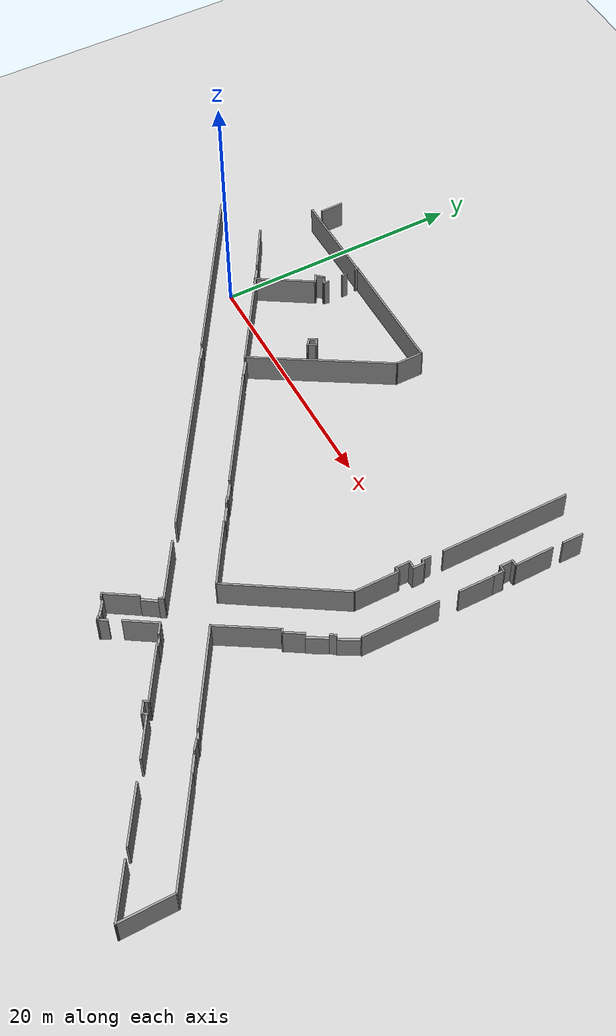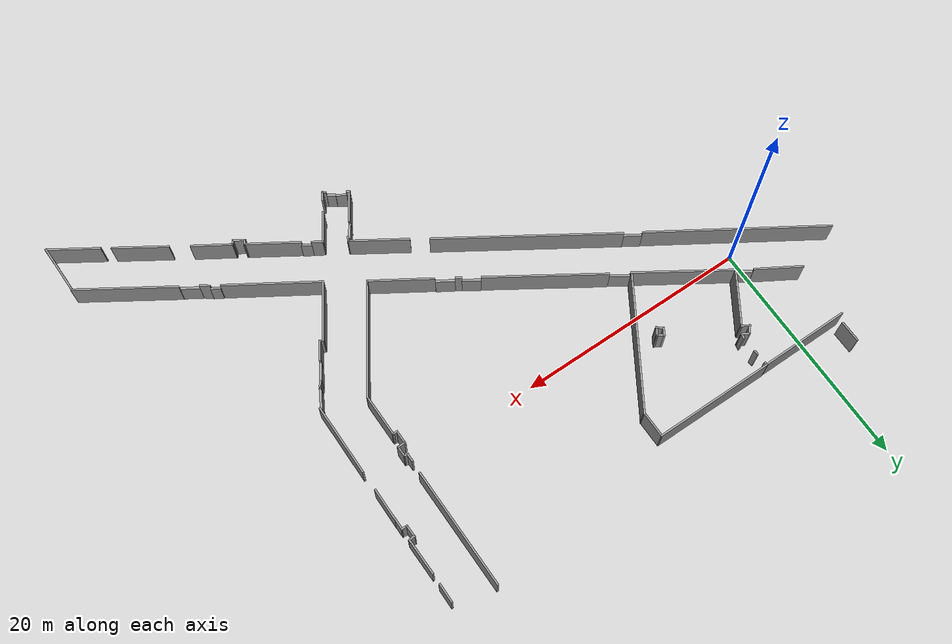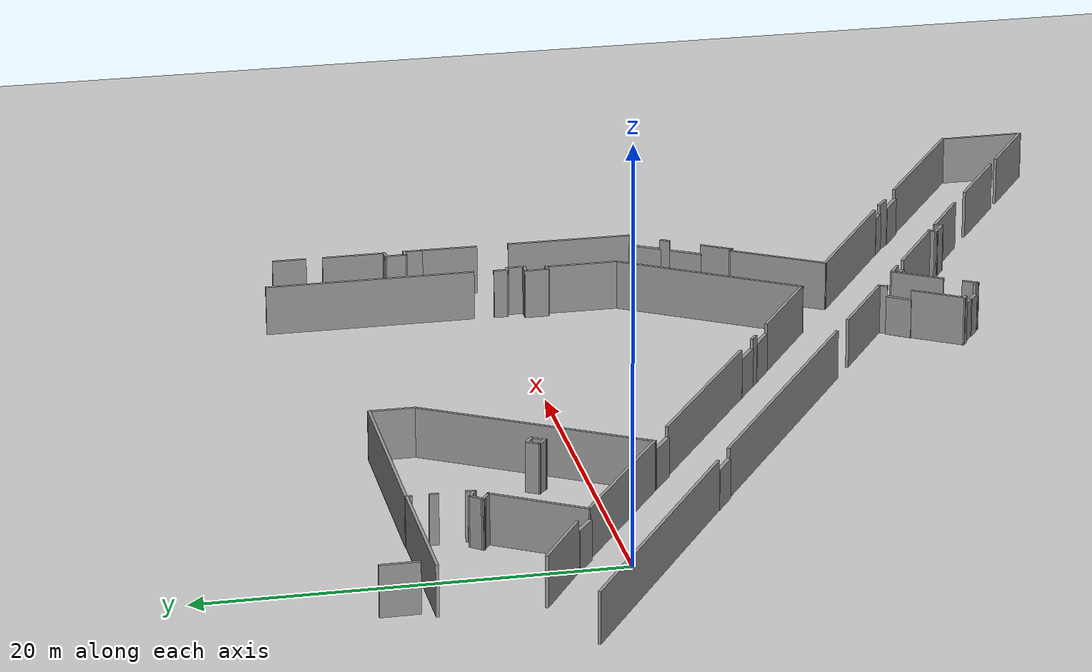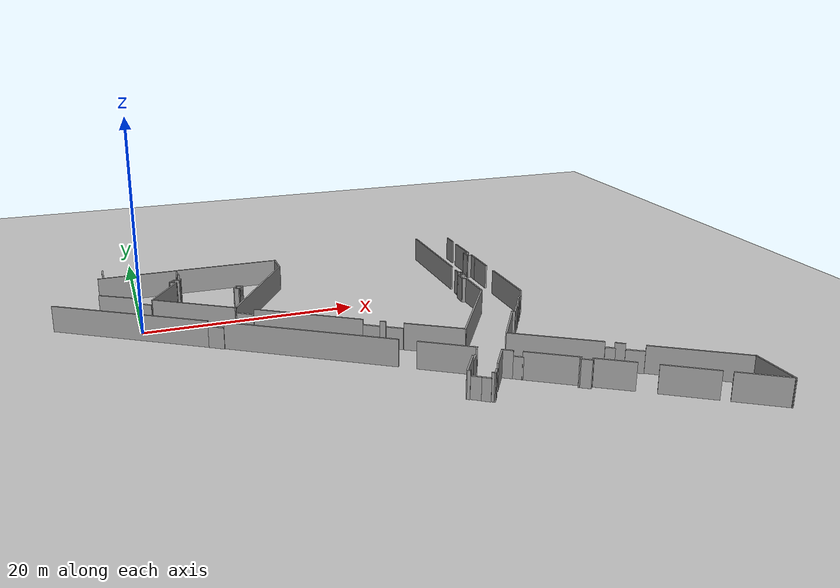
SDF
<sdf version="1.7">
 <world name="default">
  <model name="ground_plane">
   <static>1</static>
   <link name="link">
    <collision name="collision">
     <geometry><plane><normal>0 0 1</normal><size>100 100</size></plane></geometry>
     <surface><friction><ode><mu>100</mu><mu2>50</mu2></ode></friction></surface>
    </collision>
    <visual name="visual">
     <cast_shadows>0</cast_shadows>
     <geometry><plane><normal>0 0 1</normal><size>100 100</size></plane></geometry>
     <material>
      <script><uri>file://media/materials/scripts/gazebo.material</uri><name>Gazebo/Grey</name></script>
     </material>
    </visual>
   </link>
  </model>
  <model name="Hopper_Basement">
   <pose>6.01939 1.54901 0 0 -0 0</pose>
   <link name="Door_1">
    <collision name="Door_1_Collision">
     <geometry><box><size>0.9 0.17 2</size></box></geometry>
     <pose>0 0 1 0 -0 0</pose>
    </collision>
    <visual name="Door_1_Visual">
     <pose>0 0 1 0 -0 0</pose>
     <geometry><box><size>0.9 0.17 2</size></box></geometry>
     <material>
      <script><uri>file://media/materials/scripts/gazebo.material</uri><name>Gazebo/Grey</name></script>
     </material>
    </visual>
    <pose>17.5368 -23.5338 0 0 -0 -0.56303</pose>
   </link>
   <link name="Door_10">
    <collision name="Door_10_Collision">
     <geometry><box><size>1.49816 0.2 2</size></box></geometry>
     <pose>0 0 1 0 -0 0</pose>
    </collision>
    <visual name="Door_10_Visual">
     <pose>0 0 1 0 -0 0</pose>
     <geometry><box><size>1.49816 0.2 2</size></box></geometry>
     <material>
      <script><uri>file://media/materials/scripts/gazebo.material</uri><name>Gazebo/Grey</name></script>
     </material>
    </visual>
    <pose>0.000581 -7.09301 0 0 -0 2.56816</pose>
   </link>
   <link name="Door_11">
    <collision name="Door_11_Collision">
     <geometry><box><size>1.38841 0.2 2</size></box></geometry>
     <pose>0 0 1 0 -0 0</pose>
    </collision>
    <visual name="Door_11_Visual">
     <pose>0 0 1 0 -0 0</pose>
     <geometry><box><size>1.38841 0.2 2</size></box></geometry>
     <material>
      <script><uri>file://media/materials/scripts/gazebo.material</uri><name>Gazebo/Grey</name></script>
     </material>
    </visual>
    <pose>-5.47167 0.553969 0 0 -0 2.53623</pose>
   </link>
   <link name="Door_18">
    <collision name="Door_18_Collision">
     <geometry><box><size>1.69771 0.2 2</size></box></geometry>
     <pose>0 0 1 0 -0 0</pose>
    </collision>
    <visual name="Door_18_Visual">
     <pose>0 0 1 0 -0 0</pose>
     <geometry><box><size>1.69771 0.2 2</size></box></geometry>
     <material>
      <script><uri>file://media/materials/scripts/gazebo.material</uri><name>Gazebo/Grey</name></script>
     </material>
    </visual>
    <pose>27.2177 -11.4449 0 0 -0 1.03772</pose>
   </link>
   <link name="Door_19">
    <collision name="Door_19_Collision">
     <geometry><box><size>1.71307 0.2 2</size></box></geometry>
     <pose>0 0 1 0 -0 0</pose>
    </collision>
    <visual name="Door_19_Visual">
     <pose>0 0 1 0 -0 0</pose>
     <geometry><box><size>1.71307 0.2 2</size></box></geometry>
     <material>
      <script><uri>file://media/materials/scripts/gazebo.material</uri><name>Gazebo/Grey</name></script>
     </material>
    </visual>
    <pose>28.3872 -9.58453 0 0 -0 1.05525</pose>
   </link>
   <link name="Door_2">
    <collision name="Door_2_Collision">
     <geometry><box><size>0.767569 0.2 2</size></box></geometry>
     <pose>0 0 1 0 -0 0</pose>
    </collision>
    <visual name="Door_2_Visual">
     <pose>0 0 1 0 -0 0</pose>
     <geometry><box><size>0.767569 0.2 2</size></box></geometry>
     <material>
      <script><uri>file://media/materials/scripts/gazebo.material</uri><name>Gazebo/Grey</name></script>
     </material>
    </visual>
    <pose>18.2298 -24.0147 0 0 0 -0.60249</pose>
   </link>
   <link name="Door_3">
    <collision name="Door_3_Collision">
     <geometry><box><size>1.32468 0.2 2</size></box></geometry>
     <pose>0 0 1 0 -0 0</pose>
    </collision>
    <visual name="Door_3_Visual">
     <pose>0 0 1 0 -0 0</pose>
     <geometry><box><size>1.32468 0.2 2</size></box></geometry>
     <material>
      <script><uri>file://media/materials/scripts/gazebo.material</uri><name>Gazebo/Grey</name></script>
     </material>
    </visual>
    <pose>18.7678 -20.3905 0 0 0 -2.17722</pose>
   </link>
   <link name="Door_4">
    <collision name="Door_4_Collision">
     <geometry><box><size>0.9 0.17 2</size></box></geometry>
     <pose>0 0 1 0 -0 0</pose>
    </collision>
    <visual name="Door_4_Visual">
     <pose>0 0 1 0 -0 0</pose>
     <geometry><box><size>0.9 0.17 2</size></box></geometry>
     <material>
      <script><uri>file://media/materials/scripts/gazebo.material</uri><name>Gazebo/Grey</name></script>
     </material>
    </visual>
    <pose>22.2894 -21.3526 0 0 -0 2.55037</pose>
   </link>
   <link name="Door_5">
    <collision name="Door_5_Collision">
     <geometry><box><size>0.850621 0.2 2</size></box></geometry>
     <pose>0 0 1 0 -0 0</pose>
    </collision>
    <visual name="Door_5_Visual">
     <pose>0 0 1 0 -0 0</pose>
     <geometry><box><size>0.850621 0.2 2</size></box></geometry>
     <material>
      <script><uri>file://media/materials/scripts/gazebo.material</uri><name>Gazebo/Grey</name></script>
     </material>
    </visual>
    <pose>30.3252 -22.2534 0 0 0 -0.562767</pose>
   </link>
   <link name="Door_6">
    <collision name="Door_6_Collision">
     <geometry><box><size>1.59928 0.2 2</size></box></geometry>
     <pose>0 0 1 0 -0 0</pose>
    </collision>
    <visual name="Door_6_Visual">
     <pose>0 0 1 0 -0 0</pose>
     <geometry><box><size>1.59928 0.2 2</size></box></geometry>
     <material>
      <script><uri>file://media/materials/scripts/gazebo.material</uri><name>Gazebo/Grey</name></script>
     </material>
    </visual>
    <pose>31.9912 -23.4036 0 0 -0 2.58393</pose>
   </link>
   <link name="Door_7">
    <collision name="Door_7_Collision">
     <geometry><box><size>1.56615 0.2 2</size></box></geometry>
     <pose>0 0 1 0 -0 0</pose>
    </collision>
    <visual name="Door_7_Visual">
     <pose>0 0 1 0 -0 0</pose>
     <geometry><box><size>1.56615 0.2 2</size></box></geometry>
     <material>
      <script><uri>file://media/materials/scripts/gazebo.material</uri><name>Gazebo/Grey</name></script>
     </material>
    </visual>
    <pose>14.8119 -12.3698 0 0 -0 2.58025</pose>
   </link>
   <link name="Door_8">
    <collision name="Door_8_Collision">
     <geometry><box><size>1.56443 0.2 2</size></box></geometry>
     <pose>0 0 1 0 -0 0</pose>
    </collision>
    <visual name="Door_8_Visual">
     <pose>0 0 1 0 -0 0</pose>
     <geometry><box><size>1.56443 0.2 2</size></box></geometry>
     <material>
      <script><uri>file://media/materials/scripts/gazebo.material</uri><name>Gazebo/Grey</name></script>
     </material>
    </visual>
    <pose>13.0298 -11.2254 0 0 -0 2.55791</pose>
   </link>
   <link name="Door_9">
    <collision name="Door_9_Collision">
     <geometry><box><size>1.72128 0.2 2</size></box></geometry>
     <pose>0 0 1 0 -0 0</pose>
    </collision>
    <visual name="Door_9_Visual">
     <pose>0 0 1 0 -0 0</pose>
     <geometry><box><size>1.72128 0.2 2</size></box></geometry>
     <material>
      <script><uri>file://media/materials/scripts/gazebo.material</uri><name>Gazebo/Grey</name></script>
     </material>
    </visual>
    <pose>2.98021 -4.81191 0 0 -0 2.54196</pose>
   </link>
   <link name="Wall_10">
    <collision name="Wall_10_Collision">
     <geometry><box><size>4.03256 0.15 2.5</size></box></geometry>
     <pose>0 0 1.25 0 -0 0</pose>
    </collision>
    <visual name="Wall_10_Visual">
     <pose>0 0 1.25 0 -0 0</pose>
     <geometry><box><size>4.03256 0.15 2.5</size></box></geometry>
     <material>
      <script><uri>file://media/materials/scripts/gazebo.material</uri><name>Gazebo/Grey</name></script>
      <ambient>1 1 1 1</ambient>
     </material>
     <meta><layer>0</layer></meta>
    </visual>
    <pose>-7.77452 2.0023 0 0 -0 -0.539781</pose>
   </link>
   <link name="Wall_12">
    <collision name="Wall_12_Collision">
     <geometry><box><size>0.50762 0.15 2.5</size></box></geometry>
     <pose>0 0 1.25 0 -0 0</pose>
    </collision>
    <visual name="Wall_12_Visual">
     <pose>0 0 1.25 0 -0 0</pose>
     <geometry><box><size>0.50762 0.15 2.5</size></box></geometry>
     <material>
      <script><uri>file://media/materials/scripts/gazebo.material</uri><name>Gazebo/Grey</name></script>
      <ambient>1 1 1 1</ambient>
     </material>
     <meta><layer>0</layer></meta>
    </visual>
    <pose>-1.74517 4.99309 0 0 -0 -1.76819</pose>
   </link>
   <link name="Wall_13">
    <collision name="Wall_13_Collision">
     <geometry><box><size>0.75 0.15 2.5</size></box></geometry>
     <pose>0 0 1.25 0 -0 0</pose>
    </collision>
    <visual name="Wall_13_Visual">
     <pose>0 0 1.25 0 -0 0</pose>
     <geometry><box><size>0.75 0.15 2.5</size></box></geometry>
     <material>
      <script><uri>file://media/materials/scripts/gazebo.material</uri><name>Gazebo/Grey</name></script>
      <ambient>1 1 1 1</ambient>
     </material>
     <meta><layer>0</layer></meta>
    </visual>
    <pose>-2.04005 4.96775 0 0 -0 2.61799</pose>
   </link>
   <link name="Wall_130">
    <collision name="Wall_130_Collision">
     <geometry><box><size>1.70584 0.15 2.5</size></box></geometry>
     <pose>0 0 1.25 0 -0 0</pose>
    </collision>
    <visual name="Wall_130_Visual">
     <pose>0 0 1.25 0 -0 0</pose>
     <geometry><box><size>1.70584 0.15 2.5</size></box></geometry>
     <material>
      <script><uri>file://media/materials/scripts/gazebo.material</uri><name>Gazebo/Grey</name></script>
      <ambient>1 1 1 1</ambient>
     </material>
     <meta><layer>0</layer></meta>
    </visual>
    <pose>28.9443 8.61431 0 0 -0 -1.5806</pose>
   </link>
   <link name="Wall_133">
    <collision name="Wall_133_Collision">
     <geometry><box><size>3.22589 0.15 2.5</size></box></geometry>
     <pose>0 0 1.25 0 -0 0</pose>
    </collision>
    <visual name="Wall_133_Visual">
     <pose>0 0 1.25 0 -0 0</pose>
     <geometry><box><size>3.22589 0.15 2.5</size></box></geometry>
     <material>
      <script><uri>file://media/materials/scripts/gazebo.material</uri><name>Gazebo/Grey</name></script>
      <ambient>1 1 1 1</ambient>
     </material>
     <meta><layer>0</layer></meta>
    </visual>
    <pose>28.9359 5.31794 0 0 -0 -1.56218</pose>
   </link>
   <link name="Wall_134">
    <collision name="Wall_134_Collision">
     <geometry><box><size>0.602525 0.15 2.5</size></box></geometry>
     <pose>0 0 1.25 0 -0 0</pose>
    </collision>
    <visual name="Wall_134_Visual">
     <pose>0 0 1.25 0 -0 0</pose>
     <geometry><box><size>0.602525 0.15 2.5</size></box></geometry>
     <material>
      <script><uri>file://media/materials/scripts/gazebo.material</uri><name>Gazebo/Grey</name></script>
      <ambient>1 1 1 1</ambient>
     </material>
     <meta><layer>0</layer></meta>
    </visual>
    <pose>28.7238 3.76012 0 0 -0 -3.05358</pose>
   </link>
   <link name="Wall_135">
    <collision name="Wall_135_Collision">
     <geometry><box><size>1.13119 0.15 2.5</size></box></geometry>
     <pose>0 0 1.25 0 -0 0</pose>
    </collision>
    <visual name="Wall_135_Visual">
     <pose>0 0 1.25 0 -0 0</pose>
     <geometry><box><size>1.13119 0.15 2.5</size></box></geometry>
     <material>
      <script><uri>file://media/materials/scripts/gazebo.material</uri><name>Gazebo/Grey</name></script>
      <ambient>1 1 1 1</ambient>
     </material>
     <meta><layer>0</layer></meta>
    </visual>
    <pose>28.505 3.24968 0 0 -0 -1.55728</pose>
   </link>
   <link name="Wall_136">
    <collision name="Wall_136_Collision">
     <geometry><box><size>0.587716 0.15 2.5</size></box></geometry>
     <pose>0 0 1.25 0 -0 0</pose>
    </collision>
    <visual name="Wall_136_Visual">
     <pose>0 0 1.25 0 -0 0</pose>
     <geometry><box><size>0.587716 0.15 2.5</size></box></geometry>
     <material>
      <script><uri>file://media/materials/scripts/gazebo.material</uri><name>Gazebo/Grey</name></script>
      <ambient>1 1 1 1</ambient>
     </material>
     <meta><layer>0</layer></meta>
    </visual>
    <pose>28.7304 2.75251 0 0 -0 -0.030294</pose>
   </link>
   <link name="Wall_137">
    <collision name="Wall_137_Collision">
     <geometry><box><size>1 0.15 2.5</size></box></geometry>
     <pose>0 0 1.25 0 -0 0</pose>
    </collision>
    <visual name="Wall_137_Visual">
     <pose>0 0 1.25 0 -0 0</pose>
     <geometry><box><size>1 0.15 2.5</size></box></geometry>
     <material>
      <script><uri>file://media/materials/scripts/gazebo.material</uri><name>Gazebo/Grey</name></script>
      <ambient>1 1 1 1</ambient>
     </material>
     <meta><layer>0</layer></meta>
    </visual>
    <pose>28.9491 2.32088 0 0 -0 -1.5708</pose>
   </link>
   <link name="Wall_139">
    <collision name="Wall_139_Collision">
     <geometry><box><size>2.88119 0.15 2.5</size></box></geometry>
     <pose>0 0 1.25 0 -0 0</pose>
    </collision>
    <visual name="Wall_139_Visual">
     <pose>0 0 1.25 0 -0 0</pose>
     <geometry><box><size>2.88119 0.15 2.5</size></box></geometry>
     <material>
      <script><uri>file://media/materials/scripts/gazebo.material</uri><name>Gazebo/Grey</name></script>
      <ambient>1 1 1 1</ambient>
     </material>
     <meta><layer>0</layer></meta>
    </visual>
    <pose>28.9491 0.465496 0 0 -0 1.56109</pose>
   </link>
   <link name="Wall_14">
    <collision name="Wall_14_Collision">
     <geometry><box><size>0.838631 0.15 2.5</size></box></geometry>
     <pose>0 0 1.25 0 -0 0</pose>
    </collision>
    <visual name="Wall_14_Visual">
     <pose>0 0 1.25 0 -0 0</pose>
     <geometry><box><size>0.838631 0.15 2.5</size></box></geometry>
     <material>
      <script><uri>file://media/materials/scripts/gazebo.material</uri><name>Gazebo/Grey</name></script>
      <ambient>1 1 1 1</ambient>
     </material>
     <meta><layer>0</layer></meta>
    </visual>
    <pose>-2.53099 4.86255 0 0 -0 -2.30675</pose>
   </link>
   <link name="Wall_141">
    <collision name="Wall_141_Collision">
     <geometry><box><size>6.28034 0.15 2.5</size></box></geometry>
     <pose>0 0 1.25 0 -0 0</pose>
    </collision>
    <visual name="Wall_141_Visual">
     <pose>0 0 1.25 0 -0 0</pose>
     <geometry><box><size>6.28034 0.15 2.5</size></box></geometry>
     <material>
      <script><uri>file://media/materials/scripts/gazebo.material</uri><name>Gazebo/Grey</name></script>
      <ambient>1 1 1 1</ambient>
     </material>
     <meta><layer>0</layer></meta>
    </visual>
    <pose>28.9323 -5.7266 0 0 -0 -1.57737</pose>
   </link>
   <link name="Wall_144">
    <collision name="Wall_144_Collision">
     <geometry><box><size>0.525069 0.15 2.5</size></box></geometry>
     <pose>0 0 1.25 0 -0 0</pose>
    </collision>
    <visual name="Wall_144_Visual">
     <pose>0 0 1.25 0 -0 0</pose>
     <geometry><box><size>0.525069 0.15 2.5</size></box></geometry>
     <material>
      <script><uri>file://media/materials/scripts/gazebo.material</uri><name>Gazebo/Grey</name></script>
      <ambient>1 1 1 1</ambient>
     </material>
     <meta><layer>0</layer></meta>
    </visual>
    <pose>27.8132 -10.4953 0 0 -0 -2.20355</pose>
   </link>
   <link name="Wall_146">
    <collision name="Wall_146_Collision">
     <geometry><box><size>1.71931 0.15 2.5</size></box></geometry>
     <pose>0 0 1.25 0 -0 0</pose>
    </collision>
    <visual name="Wall_146_Visual">
     <pose>0 0 1.25 0 -0 0</pose>
     <geometry><box><size>1.71931 0.15 2.5</size></box></geometry>
     <material>
      <script><uri>file://media/materials/scripts/gazebo.material</uri><name>Gazebo/Grey</name></script>
      <ambient>1 1 1 1</ambient>
     </material>
     <meta><layer>0</layer></meta>
    </visual>
    <pose>26.3457 -12.8341 0 0 -0 -2.13455</pose>
   </link>
   <link name="Wall_147">
    <collision name="Wall_147_Collision">
     <geometry><box><size>0.410537 0.15 2.5</size></box></geometry>
     <pose>0 0 1.25 0 -0 0</pose>
    </collision>
    <visual name="Wall_147_Visual">
     <pose>0 0 1.25 0 -0 0</pose>
     <geometry><box><size>0.410537 0.15 2.5</size></box></geometry>
     <material>
      <script><uri>file://media/materials/scripts/gazebo.material</uri><name>Gazebo/Grey</name></script>
      <ambient>1 1 1 1</ambient>
     </material>
     <meta><layer>0</layer></meta>
    </visual>
    <pose>25.8044 -13.4516 0 0 -0 2.78282</pose>
   </link>
   <link name="Wall_148">
    <collision name="Wall_148_Collision">
     <geometry><box><size>5.17139 0.15 2.5</size></box></geometry>
     <pose>0 0 1.25 0 -0 0</pose>
    </collision>
    <visual name="Wall_148_Visual">
     <pose>0 0 1.25 0 -0 0</pose>
     <geometry><box><size>5.17139 0.15 2.5</size></box></geometry>
     <material>
      <script><uri>file://media/materials/scripts/gazebo.material</uri><name>Gazebo/Grey</name></script>
      <ambient>1 1 1 1</ambient>
     </material>
     <meta><layer>0</layer></meta>
    </visual>
    <pose>24.3483 -15.5328 0 0 -0 -2.13101</pose>
   </link>
   <link name="Wall_15">
    <collision name="Wall_15_Collision">
     <geometry><box><size>0.811653 0.15 2.5</size></box></geometry>
     <pose>0 0 1.25 0 -0 0</pose>
    </collision>
    <visual name="Wall_15_Visual">
     <pose>0 0 1.25 0 -0 0</pose>
     <geometry><box><size>0.811653 0.15 2.5</size></box></geometry>
     <material>
      <script><uri>file://media/materials/scripts/gazebo.material</uri><name>Gazebo/Grey</name></script>
      <ambient>1 1 1 1</ambient>
     </material>
     <meta><layer>0</layer></meta>
    </visual>
    <pose>-2.48159 4.43201 0 0 -0 -0.558599</pose>
   </link>
   <link name="Wall_150">
    <collision name="Wall_150_Collision">
     <geometry><box><size>8.26316 0.15 2.5</size></box></geometry>
     <pose>0 0 1.25 0 -0 0</pose>
    </collision>
    <visual name="Wall_150_Visual">
     <pose>0 0 1.25 0 -0 0</pose>
     <geometry><box><size>8.26316 0.15 2.5</size></box></geometry>
     <material>
      <script><uri>file://media/materials/scripts/gazebo.material</uri><name>Gazebo/Grey</name></script>
      <ambient>1 1 1 1</ambient>
     </material>
     <meta><layer>0</layer></meta>
    </visual>
    <pose>26.4448 -19.8248 0 0 -0 -0.562982</pose>
   </link>
   <link name="Wall_152">
    <collision name="Wall_152_Collision">
     <geometry><box><size>0.890998 0.15 2.5</size></box></geometry>
     <pose>0 0 1.25 0 -0 0</pose>
    </collision>
    <visual name="Wall_152_Visual">
     <pose>0 0 1.25 0 -0 0</pose>
     <geometry><box><size>0.890998 0.15 2.5</size></box></geometry>
     <material>
      <script><uri>file://media/materials/scripts/gazebo.material</uri><name>Gazebo/Grey</name></script>
      <ambient>1 1 1 1</ambient>
     </material>
     <meta><layer>0</layer></meta>
    </visual>
    <pose>30.9654 -22.6988 0 0 -0 -0.639386</pose>
   </link>
   <link name="Wall_154">
    <collision name="Wall_154_Collision">
     <geometry><box><size>2.81857 0.15 2.5</size></box></geometry>
     <pose>0 0 1.25 0 -0 0</pose>
    </collision>
    <visual name="Wall_154_Visual">
     <pose>0 0 1.25 0 -0 0</pose>
     <geometry><box><size>2.81857 0.15 2.5</size></box></geometry>
     <material>
      <script><uri>file://media/materials/scripts/gazebo.material</uri><name>Gazebo/Grey</name></script>
      <ambient>1 1 1 1</ambient>
     </material>
     <meta><layer>0</layer></meta>
    </visual>
    <pose>17.655 -22.0889 0 0 -0 -2.14454</pose>
   </link>
   <link name="Wall_155">
    <collision name="Wall_155_Collision">
     <geometry><box><size>0.33611 0.15 2.5</size></box></geometry>
     <pose>0 0 1.25 0 -0 0</pose>
    </collision>
    <visual name="Wall_155_Visual">
     <pose>0 0 1.25 0 -0 0</pose>
     <geometry><box><size>0.33611 0.15 2.5</size></box></geometry>
     <material>
      <script><uri>file://media/materials/scripts/gazebo.material</uri><name>Gazebo/Grey</name></script>
      <ambient>1 1 1 1</ambient>
     </material>
     <meta><layer>0</layer></meta>
    </visual>
    <pose>17.007 -23.2629 0 0 -0 -0.610726</pose>
   </link>
   <link name="Wall_157">
    <collision name="Wall_157_Collision">
     <geometry><box><size>0.388162 0.15 2.5</size></box></geometry>
     <pose>0 0 1.25 0 -0 0</pose>
    </collision>
    <visual name="Wall_157_Visual">
     <pose>0 0 1.25 0 -0 0</pose>
     <geometry><box><size>0.388162 0.15 2.5</size></box></geometry>
     <material>
      <script><uri>file://media/materials/scripts/gazebo.material</uri><name>Gazebo/Grey</name></script>
      <ambient>1 1 1 1</ambient>
     </material>
     <meta><layer>0</layer></meta>
    </visual>
    <pose>18.6842 -24.3073 0 0 -0 -0.694738</pose>
   </link>
   <link name="Wall_158">
    <collision name="Wall_158_Collision">
     <geometry><box><size>0.835256 0.15 2.5</size></box></geometry>
     <pose>0 0 1.25 0 -0 0</pose>
    </collision>
    <visual name="Wall_158_Visual">
     <pose>0 0 1.25 0 -0 0</pose>
     <geometry><box><size>0.835256 0.15 2.5</size></box></geometry>
     <material>
      <script><uri>file://media/materials/scripts/gazebo.material</uri><name>Gazebo/Grey</name></script>
      <ambient>1 1 1 1</ambient>
     </material>
     <meta><layer>0</layer></meta>
    </visual>
    <pose>18.9586 -24.0938 0 0 -0 1.00748</pose>
   </link>
   <link name="Wall_16">
    <collision name="Wall_16_Collision">
     <geometry><box><size>4.97507 0.15 2.5</size></box></geometry>
     <pose>0 0 1.25 0 -0 0</pose>
    </collision>
    <visual name="Wall_16_Visual">
     <pose>0 0 1.25 0 -0 0</pose>
     <geometry><box><size>4.97507 0.15 2.5</size></box></geometry>
     <material>
      <script><uri>file://media/materials/scripts/gazebo.material</uri><name>Gazebo/Grey</name></script>
      <ambient>1 1 1 1</ambient>
     </material>
     <meta><layer>0</layer></meta>
    </visual>
    <pose>-3.49855 2.22275 0 0 -0 -2.13864</pose>
   </link>
   <link name="Wall_160">
    <collision name="Wall_160_Collision">
     <geometry><box><size>2.78469 0.15 2.5</size></box></geometry>
     <pose>0 0 1.25 0 -0 0</pose>
    </collision>
    <visual name="Wall_160_Visual">
     <pose>0 0 1.25 0 -0 0</pose>
     <geometry><box><size>2.78469 0.15 2.5</size></box></geometry>
     <material>
      <script><uri>file://media/materials/scripts/gazebo.material</uri><name>Gazebo/Grey</name></script>
      <ambient>1 1 1 1</ambient>
     </material>
     <meta><layer>0</layer></meta>
    </visual>
    <pose>20.4223 -21.7382 0 0 -0 0.995634</pose>
   </link>
   <link name="Wall_161">
    <collision name="Wall_161_Collision">
     <geometry><box><size>1.01303 0.15 2.5</size></box></geometry>
     <pose>0 0 1.25 0 -0 0</pose>
    </collision>
    <visual name="Wall_161_Visual">
     <pose>0 0 1.25 0 -0 0</pose>
     <geometry><box><size>1.01303 0.15 2.5</size></box></geometry>
     <material>
      <script><uri>file://media/materials/scripts/gazebo.material</uri><name>Gazebo/Grey</name></script>
      <ambient>1 1 1 1</ambient>
     </material>
     <meta><layer>0</layer></meta>
    </visual>
    <pose>21.5048 -20.8615 0 0 -0 -0.558599</pose>
   </link>
   <link name="Wall_163">
    <collision name="Wall_163_Collision">
     <geometry><box><size>4.68016 0.15 2.5</size></box></geometry>
     <pose>0 0 1.25 0 -0 0</pose>
    </collision>
    <visual name="Wall_163_Visual">
     <pose>0 0 1.25 0 -0 0</pose>
     <geometry><box><size>4.68016 0.15 2.5</size></box></geometry>
     <material>
      <script><uri>file://media/materials/scripts/gazebo.material</uri><name>Gazebo/Grey</name></script>
      <ambient>1 1 1 1</ambient>
     </material>
     <meta><layer>0</layer></meta>
    </visual>
    <pose>24.5465 -22.8055 0 0 -0 -0.564664</pose>
   </link>
   <link name="Wall_164">
    <collision name="Wall_164_Collision">
     <geometry><box><size>0.509836 0.15 2.5</size></box></geometry>
     <pose>0 0 1.25 0 -0 0</pose>
    </collision>
    <visual name="Wall_164_Visual">
     <pose>0 0 1.25 0 -0 0</pose>
     <geometry><box><size>0.509836 0.15 2.5</size></box></geometry>
     <material>
      <script><uri>file://media/materials/scripts/gazebo.material</uri><name>Gazebo/Grey</name></script>
      <ambient>1 1 1 1</ambient>
     </material>
     <meta><layer>0</layer></meta>
    </visual>
    <pose>26.3533 -24.1625 0 0 -0 -2.20582</pose>
   </link>
   <link name="Wall_165">
    <collision name="Wall_165_Collision">
     <geometry><box><size>1.10191 0.15 2.5</size></box></geometry>
     <pose>0 0 1.25 0 -0 0</pose>
    </collision>
    <visual name="Wall_165_Visual">
     <pose>0 0 1.25 0 -0 0</pose>
     <geometry><box><size>1.10191 0.15 2.5</size></box></geometry>
     <material>
      <script><uri>file://media/materials/scripts/gazebo.material</uri><name>Gazebo/Grey</name></script>
      <ambient>1 1 1 1</ambient>
     </material>
     <meta><layer>0</layer></meta>
    </visual>
    <pose>26.6506 -24.5589 0 0 -0 -0.556902</pose>
   </link>
   <link name="Wall_166">
    <collision name="Wall_166_Collision">
     <geometry><box><size>0.497679 0.15 2.5</size></box></geometry>
     <pose>0 0 1.25 0 -0 0</pose>
    </collision>
    <visual name="Wall_166_Visual">
     <pose>0 0 1.25 0 -0 0</pose>
     <geometry><box><size>0.497679 0.15 2.5</size></box></geometry>
     <material>
      <script><uri>file://media/materials/scripts/gazebo.material</uri><name>Gazebo/Grey</name></script>
      <ambient>1 1 1 1</ambient>
     </material>
     <meta><layer>0</layer></meta>
    </visual>
    <pose>27.1614 -24.6732 0 0 -0 0.909753</pose>
   </link>
   <link name="Wall_168">
    <collision name="Wall_168_Collision">
     <geometry><box><size>3.5003 0.15 2.5</size></box></geometry>
     <pose>0 0 1.25 0 -0 0</pose>
    </collision>
    <visual name="Wall_168_Visual">
     <pose>0 0 1.25 0 -0 0</pose>
     <geometry><box><size>3.5003 0.15 2.5</size></box></geometry>
     <material>
      <script><uri>file://media/materials/scripts/gazebo.material</uri><name>Gazebo/Grey</name></script>
      <ambient>1 1 1 1</ambient>
     </material>
     <meta><layer>0</layer></meta>
    </visual>
    <pose>28.686 -25.4279 0 0 -0 -0.561494</pose>
   </link>
   <link name="Wall_17">
    <collision name="Wall_17_Collision">
     <geometry><box><size>8.49585 0.15 2.5</size></box></geometry>
     <pose>0 0 1.25 0 -0 0</pose>
    </collision>
    <visual name="Wall_17_Visual">
     <pose>0 0 1.25 0 -0 0</pose>
     <geometry><box><size>8.49585 0.15 2.5</size></box></geometry>
     <material>
      <script><uri>file://media/materials/scripts/gazebo.material</uri><name>Gazebo/Grey</name></script>
      <ambient>1 1 1 1</ambient>
     </material>
     <meta><layer>0</layer></meta>
    </visual>
    <pose>-1.2893 -2.07302 0 0 -0 -0.572852</pose>
   </link>
   <link name="Wall_170">
    <collision name="Wall_170_Collision">
     <geometry><box><size>8.6046 0.15 2.5</size></box></geometry>
     <pose>0 0 1.25 0 -0 0</pose>
    </collision>
    <visual name="Wall_170_Visual">
     <pose>0 0 1.25 0 -0 0</pose>
     <geometry><box><size>8.6046 0.15 2.5</size></box></geometry>
     <material>
      <script><uri>file://media/materials/scripts/gazebo.material</uri><name>Gazebo/Grey</name></script>
      <ambient>1 1 1 1</ambient>
     </material>
     <meta><layer>0</layer></meta>
    </visual>
    <pose>36.3323 -26.114 0 0 -0 -0.569495</pose>
   </link>
   <link name="Wall_173">
    <collision name="Wall_173_Collision">
     <geometry><box><size>4.68372 0.15 2.5</size></box></geometry>
     <pose>0 0 1.25 0 -0 0</pose>
    </collision>
    <visual name="Wall_173_Visual">
     <pose>0 0 1.25 0 -0 0</pose>
     <geometry><box><size>4.68372 0.15 2.5</size></box></geometry>
     <material>
      <script><uri>file://media/materials/scripts/gazebo.material</uri><name>Gazebo/Grey</name></script>
      <ambient>1 1 1 1</ambient>
     </material>
     <meta><layer>0</layer></meta>
    </visual>
    <pose>33.5345 -28.5383 0 0 -0 -0.572146</pose>
   </link>
   <link name="Wall_175">
    <collision name="Wall_175_Collision">
     <geometry><box><size>4.49776 0.15 2.5</size></box></geometry>
     <pose>0 0 1.25 0 -0 0</pose>
    </collision>
    <visual name="Wall_175_Visual">
     <pose>0 0 1.25 0 -0 0</pose>
     <geometry><box><size>4.49776 0.15 2.5</size></box></geometry>
     <material>
      <script><uri>file://media/materials/scripts/gazebo.material</uri><name>Gazebo/Grey</name></script>
      <ambient>1 1 1 1</ambient>
     </material>
     <meta><layer>0</layer></meta>
    </visual>
    <pose>38.0628 -31.458 0 0 -0 -0.570495</pose>
   </link>
   <link name="Wall_176">
    <collision name="Wall_176_Collision">
     <geometry><box><size>4.32764 0.15 2.5</size></box></geometry>
     <pose>0 0 1.25 0 -0 0</pose>
    </collision>
    <visual name="Wall_176_Visual">
     <pose>0 0 1.25 0 -0 0</pose>
     <geometry><box><size>4.32764 0.15 2.5</size></box></geometry>
     <material>
      <script><uri>file://media/materials/scripts/gazebo.material</uri><name>Gazebo/Grey</name></script>
      <ambient>1 1 1 1</ambient>
     </material>
     <meta><layer>0</layer></meta>
    </visual>
    <pose>39.8848 -30.5432 0 0 -0 1.57445</pose>
   </link>
   <link name="Wall_179">
    <collision name="Wall_179_Collision">
     <geometry><box><size>0.44408 0.15 2.5</size></box></geometry>
     <pose>0 0 1.25 0 -0 0</pose>
    </collision>
    <visual name="Wall_179_Visual">
     <pose>0 0 1.25 0 -0 0</pose>
     <geometry><box><size>0.44408 0.15 2.5</size></box></geometry>
     <material>
      <script><uri>file://media/materials/scripts/gazebo.material</uri><name>Gazebo/Grey</name></script>
      <ambient>1 1 1 1</ambient>
     </material>
     <meta><layer>0</layer></meta>
    </visual>
    <pose>-1.74366 6.68623 0 0 -0 -1.53633</pose>
   </link>
   <link name="Wall_181">
    <collision name="Wall_181_Collision">
     <geometry><box><size>0.742121 0.15 2.5</size></box></geometry>
     <pose>0 0 1.25 0 -0 0</pose>
    </collision>
    <visual name="Wall_181_Visual">
     <pose>0 0 1.25 0 -0 0</pose>
     <geometry><box><size>0.742121 0.15 2.5</size></box></geometry>
     <material>
      <script><uri>file://media/materials/scripts/gazebo.material</uri><name>Gazebo/Grey</name></script>
      <ambient>1 1 1 1</ambient>
     </material>
     <meta><layer>0</layer></meta>
    </visual>
    <pose>3.13929 1.17314 0 0 -0 -2.09559</pose>
   </link>
   <link name="Wall_182">
    <collision name="Wall_182_Collision">
     <geometry><box><size>0.706009 0.15 2.5</size></box></geometry>
     <pose>0 0 1.25 0 -0 0</pose>
    </collision>
    <visual name="Wall_182_Visual">
     <pose>0 0 1.25 0 -0 0</pose>
     <geometry><box><size>0.706009 0.15 2.5</size></box></geometry>
     <material>
      <script><uri>file://media/materials/scripts/gazebo.material</uri><name>Gazebo/Grey</name></script>
      <ambient>1 1 1 1</ambient>
     </material>
     <meta><layer>0</layer></meta>
    </visual>
    <pose>3.20671 0.741609 0 0 -0 -0.682317</pose>
   </link>
   <link name="Wall_183">
    <collision name="Wall_183_Collision">
     <geometry><box><size>0.816119 0.15 2.5</size></box></geometry>
     <pose>0 0 1.25 0 -0 0</pose>
    </collision>
    <visual name="Wall_183_Visual">
     <pose>0 0 1.25 0 -0 0</pose>
     <geometry><box><size>0.816119 0.15 2.5</size></box></geometry>
     <material>
      <script><uri>file://media/materials/scripts/gazebo.material</uri><name>Gazebo/Grey</name></script>
      <ambient>1 1 1 1</ambient>
     </material>
     <meta><layer>0</layer></meta>
    </visual>
    <pose>3.59778 0.849491 0 0 -0 1.01649</pose>
   </link>
   <link name="Wall_184">
    <collision name="Wall_184_Collision">
     <geometry><box><size>0.681939 0.15 2.5</size></box></geometry>
     <pose>0 0 1.25 0 -0 0</pose>
    </collision>
    <visual name="Wall_184_Visual">
     <pose>0 0 1.25 0 -0 0</pose>
     <geometry><box><size>0.681939 0.15 2.5</size></box></geometry>
     <material>
      <script><uri>file://media/materials/scripts/gazebo.material</uri><name>Gazebo/Grey</name></script>
      <ambient>1 1 1 1</ambient>
     </material>
     <meta><layer>0</layer></meta>
    </visual>
    <pose>3.54384 1.26753 0 0 -0 2.60987</pose>
   </link>
   <link name="Wall_186">
    <collision name="Wall_186_Collision">
     <geometry><box><size>12.0092 0.15 2.5</size></box></geometry>
     <pose>0 0 1.25 0 -0 0</pose>
    </collision>
    <visual name="Wall_186_Visual">
     <pose>0 0 1.25 0 -0 0</pose>
     <geometry><box><size>12.0092 0.15 2.5</size></box></geometry>
     <material>
      <script><uri>file://media/materials/scripts/gazebo.material</uri><name>Gazebo/Grey</name></script>
      <ambient>1 1 1 1</ambient>
     </material>
     <meta><layer>0</layer></meta>
    </visual>
    <pose>5.3417 0.70487 0 0 -0 1.01586</pose>
   </link>
   <link name="Wall_187">
    <collision name="Wall_187_Collision">
     <geometry><box><size>2.3346 0.15 2.5</size></box></geometry>
     <pose>0 0 1.25 0 -0 0</pose>
    </collision>
    <visual name="Wall_187_Visual">
     <pose>0 0 1.25 0 -0 0</pose>
     <geometry><box><size>2.3346 0.15 2.5</size></box></geometry>
     <material>
      <script><uri>file://media/materials/scripts/gazebo.material</uri><name>Gazebo/Grey</name></script>
      <ambient>1 1 1 1</ambient>
     </material>
     <meta><layer>0</layer></meta>
    </visual>
    <pose>8.46594 6.83692 0 0 -0 1.5708</pose>
   </link>
   <link name="Wall_188">
    <collision name="Wall_188_Collision">
     <geometry><box><size>10.3988 0.15 2.5</size></box></geometry>
     <pose>0 0 1.25 0 -0 0</pose>
    </collision>
    <visual name="Wall_188_Visual">
     <pose>0 0 1.25 0 -0 0</pose>
     <geometry><box><size>10.3988 0.15 2.5</size></box></geometry>
     <material>
      <script><uri>file://media/materials/scripts/gazebo.material</uri><name>Gazebo/Grey</name></script>
      <ambient>1 1 1 1</ambient>
     </material>
     <meta><layer>0</layer></meta>
    </visual>
    <pose>3.34156 7.9427 0 0 -0 3.13896</pose>
   </link>
   <link name="Wall_191">
    <collision name="Wall_191_Collision">
     <geometry><box><size>0.346886 0.15 2.5</size></box></geometry>
     <pose>0 0 1.25 0 -0 0</pose>
    </collision>
    <visual name="Wall_191_Visual">
     <pose>0 0 1.25 0 -0 0</pose>
     <geometry><box><size>0.346886 0.15 2.5</size></box></geometry>
     <material>
      <script><uri>file://media/materials/scripts/gazebo.material</uri><name>Gazebo/Grey</name></script>
      <ambient>1 1 1 1</ambient>
     </material>
     <meta><layer>0</layer></meta>
    </visual>
    <pose>-1.78392 7.85775 0 0 -0 -1.58205</pose>
   </link>
   <link name="Wall_193">
    <collision name="Wall_193_Collision">
     <geometry><box><size>7.7687 0.15 2.5</size></box></geometry>
     <pose>0 0 1.25 0 -0 0</pose>
    </collision>
    <visual name="Wall_193_Visual">
     <pose>0 0 1.25 0 -0 0</pose>
     <geometry><box><size>7.7687 0.15 2.5</size></box></geometry>
     <material>
      <script><uri>file://media/materials/scripts/gazebo.material</uri><name>Gazebo/Grey</name></script>
      <ambient>1 1 1 1</ambient>
     </material>
     <meta><layer>0</layer></meta>
    </visual>
    <pose>-5.59314 7.91532 0 0 -0 0.003071</pose>
   </link>
   <link name="Wall_20">
    <collision name="Wall_20_Collision">
     <geometry><box><size>15.4455 0.15 2.5</size></box></geometry>
     <pose>0 0 1.25 0 -0 0</pose>
    </collision>
    <visual name="Wall_20_Visual">
     <pose>0 0 1.25 0 -0 0</pose>
     <geometry><box><size>15.4455 0.15 2.5</size></box></geometry>
     <material>
      <script><uri>file://media/materials/scripts/gazebo.material</uri><name>Gazebo/Grey</name></script>
      <ambient>1 1 1 1</ambient>
     </material>
     <meta><layer>0</layer></meta>
    </visual>
    <pose>-7.15702 -2.56726 0 0 -0 -0.563671</pose>
   </link>
   <link name="Wall_22">
    <collision name="Wall_22_Collision">
     <geometry><box><size>15.7308 0.15 2.5</size></box></geometry>
     <pose>0 0 1.25 0 -0 0</pose>
    </collision>
    <visual name="Wall_22_Visual">
     <pose>0 0 1.25 0 -0 0</pose>
     <geometry><box><size>15.7308 0.15 2.5</size></box></geometry>
     <material>
      <script><uri>file://media/materials/scripts/gazebo.material</uri><name>Gazebo/Grey</name></script>
      <ambient>1 1 1 1</ambient>
     </material>
     <meta><layer>0</layer></meta>
    </visual>
    <pose>7.26641 -11.7153 0 0 -0 -0.570632</pose>
   </link>
   <link name="Wall_24">
    <collision name="Wall_24_Collision">
     <geometry><box><size>5.07307 0.15 2.5</size></box></geometry>
     <pose>0 0 1.25 0 -0 0</pose>
    </collision>
    <visual name="Wall_24_Visual">
     <pose>0 0 1.25 0 -0 0</pose>
     <geometry><box><size>5.07307 0.15 2.5</size></box></geometry>
     <material>
      <script><uri>file://media/materials/scripts/gazebo.material</uri><name>Gazebo/Grey</name></script>
      <ambient>1 1 1 1</ambient>
     </material>
     <meta><layer>0</layer></meta>
    </visual>
    <pose>17.3293 -18.1952 0 0 -0 -0.569105</pose>
   </link>
   <link name="Wall_25">
    <collision name="Wall_25_Collision">
     <geometry><box><size>0.490928 0.15 2.5</size></box></geometry>
     <pose>0 0 1.25 0 -0 0</pose>
    </collision>
    <visual name="Wall_25_Visual">
     <pose>0 0 1.25 0 -0 0</pose>
     <geometry><box><size>0.490928 0.15 2.5</size></box></geometry>
     <material>
      <script><uri>file://media/materials/scripts/gazebo.material</uri><name>Gazebo/Grey</name></script>
      <ambient>1 1 1 1</ambient>
     </material>
     <meta><layer>0</layer></meta>
    </visual>
    <pose>19.3266 -19.6741 0 0 -0 -2.03444</pose>
   </link>
   <link name="Wall_27">
    <collision name="Wall_27_Collision">
     <geometry><box><size>10.2746 0.15 2.5</size></box></geometry>
     <pose>0 0 1.25 0 -0 0</pose>
    </collision>
    <visual name="Wall_27_Visual">
     <pose>0 0 1.25 0 -0 0</pose>
     <geometry><box><size>10.2746 0.15 2.5</size></box></geometry>
     <material>
      <script><uri>file://media/materials/scripts/gazebo.material</uri><name>Gazebo/Grey</name></script>
      <ambient>1 1 1 1</ambient>
     </material>
     <meta><layer>0</layer></meta>
    </visual>
    <pose>8.04399 -8.0256 0 0 -0 -0.572966</pose>
   </link>
   <link name="Wall_29">
    <collision name="Wall_29_Collision">
     <geometry><box><size>0.549463 0.15 2.5</size></box></geometry>
     <pose>0 0 1.25 0 -0 0</pose>
    </collision>
    <visual name="Wall_29_Visual">
     <pose>0 0 1.25 0 -0 0</pose>
     <geometry><box><size>0.549463 0.15 2.5</size></box></geometry>
     <material>
      <script><uri>file://media/materials/scripts/gazebo.material</uri><name>Gazebo/Grey</name></script>
      <ambient>1 1 1 1</ambient>
     </material>
     <meta><layer>0</layer></meta>
    </visual>
    <pose>13.8897 -11.8074 0 0 -0 -0.582739</pose>
   </link>
   <link name="Wall_31">
    <collision name="Wall_31_Collision">
     <geometry><box><size>5.51272 0.15 2.5</size></box></geometry>
     <pose>0 0 1.25 0 -0 0</pose>
    </collision>
    <visual name="Wall_31_Visual">
     <pose>0 0 1.25 0 -0 0</pose>
     <geometry><box><size>5.51272 0.15 2.5</size></box></geometry>
     <material>
      <script><uri>file://media/materials/scripts/gazebo.material</uri><name>Gazebo/Grey</name></script>
      <ambient>1 1 1 1</ambient>
     </material>
     <meta><layer>0</layer></meta>
    </visual>
    <pose>17.8087 -14.2824 0 0 -0 -0.563694</pose>
   </link>
   <link name="Wall_33">
    <collision name="Wall_33_Collision">
     <geometry><box><size>9.96883 0.15 2.5</size></box></geometry>
     <pose>0 0 1.25 0 -0 0</pose>
    </collision>
    <visual name="Wall_33_Visual">
     <pose>0 0 1.25 0 -0 0</pose>
     <geometry><box><size>9.96883 0.15 2.5</size></box></geometry>
     <material>
      <script><uri>file://media/materials/scripts/gazebo.material</uri><name>Gazebo/Grey</name></script>
      <ambient>1 1 1 1</ambient>
     </material>
     <meta><layer>0</layer></meta>
    </visual>
    <pose>22.7315 -11.5863 0 0 -0 0.999102</pose>
   </link>
   <link name="Wall_35">
    <collision name="Wall_35_Collision">
     <geometry><box><size>3.75 0.15 2.5</size></box></geometry>
     <pose>0 0 1.25 0 -0 0</pose>
    </collision>
    <visual name="Wall_35_Visual">
     <pose>0 0 1.25 0 -0 0</pose>
     <geometry><box><size>3.75 0.15 2.5</size></box></geometry>
     <material>
      <script><uri>file://media/materials/scripts/gazebo.material</uri><name>Gazebo/Grey</name></script>
      <ambient>1 1 1 1</ambient>
     </material>
     <meta><layer>0</layer></meta>
    </visual>
    <pose>25.3878 -5.65757 0 0 -0 1.5708</pose>
   </link>
   <link name="Wall_37">
    <collision name="Wall_37_Collision">
     <geometry><box><size>0.5 0.15 2.5</size></box></geometry>
     <pose>0 0 1.25 0 -0 0</pose>
    </collision>
    <visual name="Wall_37_Visual">
     <pose>0 0 1.25 0 -0 0</pose>
     <geometry><box><size>0.5 0.15 2.5</size></box></geometry>
     <material>
      <script><uri>file://media/materials/scripts/gazebo.material</uri><name>Gazebo/Grey</name></script>
      <ambient>1 1 1 1</ambient>
     </material>
     <meta><layer>0</layer></meta>
    </visual>
    <pose>25.2128 -3.85758 0 0 -0 3.14159</pose>
   </link>
   <link name="Wall_38">
    <collision name="Wall_38_Collision">
     <geometry><box><size>1.25 0.15 2.5</size></box></geometry>
     <pose>0 0 1.25 0 -0 0</pose>
    </collision>
    <visual name="Wall_38_Visual">
     <pose>0 0 1.25 0 -0 0</pose>
     <geometry><box><size>1.25 0.15 2.5</size></box></geometry>
     <material>
      <script><uri>file://media/materials/scripts/gazebo.material</uri><name>Gazebo/Grey</name></script>
      <ambient>1 1 1 1</ambient>
     </material>
     <meta><layer>0</layer></meta>
    </visual>
    <pose>25.0378 -3.30757 0 0 -0 1.5708</pose>
   </link>
   <link name="Wall_39">
    <collision name="Wall_39_Collision">
     <geometry><box><size>0.75 0.15 2.5</size></box></geometry>
     <pose>0 0 1.25 0 -0 0</pose>
    </collision>
    <visual name="Wall_39_Visual">
     <pose>0 0 1.25 0 -0 0</pose>
     <geometry><box><size>0.75 0.15 2.5</size></box></geometry>
     <material>
      <script><uri>file://media/materials/scripts/gazebo.material</uri><name>Gazebo/Grey</name></script>
      <ambient>1 1 1 1</ambient>
     </material>
     <meta><layer>0</layer></meta>
    </visual>
    <pose>25.3378 -2.75758 0 0 -0 0</pose>
   </link>
   <link name="Wall_40">
    <collision name="Wall_40_Collision">
     <geometry><box><size>1 0.15 2.5</size></box></geometry>
     <pose>0 0 1.25 0 -0 0</pose>
    </collision>
    <visual name="Wall_40_Visual">
     <pose>0 0 1.25 0 -0 0</pose>
     <geometry><box><size>1 0.15 2.5</size></box></geometry>
     <material>
      <script><uri>file://media/materials/scripts/gazebo.material</uri><name>Gazebo/Grey</name></script>
      <ambient>1 1 1 1</ambient>
     </material>
     <meta><layer>0</layer></meta>
    </visual>
    <pose>25.6378 -2.33257 0 0 -0 1.5708</pose>
   </link>
   <link name="Wall_43">
    <collision name="Wall_43_Collision">
     <geometry><box><size>0.430343 0.15 2.5</size></box></geometry>
     <pose>0 0 1.25 0 -0 0</pose>
    </collision>
    <visual name="Wall_43_Visual">
     <pose>0 0 1.25 0 -0 0</pose>
     <geometry><box><size>0.430343 0.15 2.5</size></box></geometry>
     <material>
      <script><uri>file://media/materials/scripts/gazebo.material</uri><name>Gazebo/Grey</name></script>
      <ambient>1 1 1 1</ambient>
     </material>
     <meta><layer>0</layer></meta>
    </visual>
    <pose>25.5008 -1.8781 0 0 -0 -0.211825</pose>
   </link>
   <link name="Wall_45">
    <collision name="Wall_45_Collision">
     <geometry><box><size>0.75 0.15 2.5</size></box></geometry>
     <pose>0 0 1.25 0 -0 0</pose>
    </collision>
    <visual name="Wall_45_Visual">
     <pose>0 0 1.25 0 -0 0</pose>
     <geometry><box><size>0.75 0.15 2.5</size></box></geometry>
     <material>
      <script><uri>file://media/materials/scripts/gazebo.material</uri><name>Gazebo/Grey</name></script>
      <ambient>1 1 1 1</ambient>
     </material>
     <meta><layer>0</layer></meta>
    </visual>
    <pose>25.3637 -1.54863 0 0 -0 1.5708</pose>
   </link>
   <link name="Wall_48">
    <collision name="Wall_48_Collision">
     <geometry><box><size>10.5 0.15 2.5</size></box></geometry>
     <pose>0 0 1.25 0 -0 0</pose>
    </collision>
    <visual name="Wall_48_Visual">
     <pose>0 0 1.25 0 -0 0</pose>
     <geometry><box><size>10.5 0.15 2.5</size></box></geometry>
     <material>
      <script><uri>file://media/materials/scripts/gazebo.material</uri><name>Gazebo/Grey</name></script>
      <ambient>1 1 1 1</ambient>
     </material>
     <meta><layer>0</layer></meta>
    </visual>
    <pose>25.416 5.07459 0 0 -0 -1.5708</pose>
   </link>
   <link name="Wall_92">
    <collision name="Wall_92_Collision">
     <geometry><box><size>1.87823 0.15 2.5</size></box></geometry>
     <pose>0 0 1.25 0 -0 0</pose>
    </collision>
    <visual name="Wall_92_Visual">
     <pose>0 0 1.25 0 -0 0</pose>
     <geometry><box><size>1.87823 0.15 2.5</size></box></geometry>
     <material>
      <script><uri>file://media/materials/scripts/gazebo.material</uri><name>Gazebo/Grey</name></script>
      <ambient>1 1 1 1</ambient>
     </material>
     <meta><layer>0</layer></meta>
    </visual>
    <pose>-8.95589 9.47181 0 0 -0 1.58075</pose>
   </link>
   <static>1</static>
  </model>
 </world>
</sdf>
